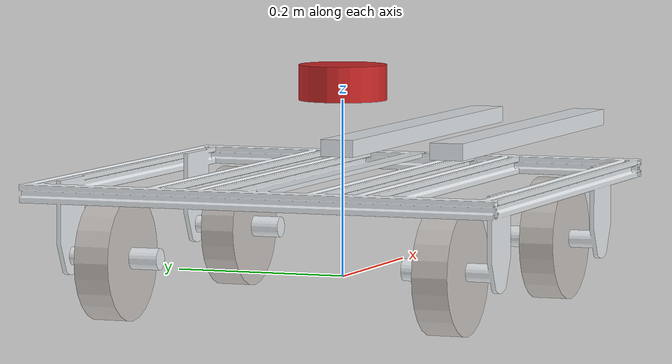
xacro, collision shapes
<?xml version="1.0"?>
<robot xmlns:xacro="http://www.ros.org/wiki/xacro" name="mecanum" >

  <link name="base_footprint_mec">
  </link>
  <joint name="base_link_mec_to_base_footprint_mec" type="fixed">
    <origin xyz="0 0 0.12" rpy="0 0 -1.57"/>
    <parent link="base_footprint_mec"/>
    <child link="base_link_mec"/>
  </joint>

  <link name="laser_mec">
    <visual>
      <geometry>
        <cylinder radius="0.05" length="0.04"/>
      </geometry>
    </visual>
    <collision>
      <geometry>
        <cylinder radius="0.05" length="0.04"/>
      </geometry>
    </collision>
    <inertial>
      <origin
        xyz="0 0 0"
        rpy="0 0 0" />
      <mass
        value="0.01" />
      <inertia
        ixx="0.01" ixy="0.0" ixz="0.0"
        iyy="0.01" iyz="0.0"
        izz="0.01"/>
    </inertial>
  </link>

  <joint name="laser_joint" type="fixed">
    <origin xyz="0 0 0.1" rpy="0 0 0"/>
    <parent link="base_link_mec"/>
    <child link="laser_mec"/>
  </joint>

  <link
    name="base_link_mec">
    <inertial>
      <origin
        xyz="-1.12180791878025E-08 -0.00977485494714381 -0.017441883763565"
        rpy="0 0 0" />
      <mass
        value="5.29285820990711" />
      <inertia
        ixx="0.0312149550140326"
        ixy="5.63125927824305E-20"
        ixz="-5.59758545320241E-14"
        iyy="0.0132712718999651"
        iyz="-4.93932954500259E-08"
        izz="0.0441257339050913" />
    </inertial>
    <visual>
      <origin
        xyz="0 0 0"
        rpy="0 0 0" />
      <geometry>
        <mesh
          filename="file:///$(find my_robot_description)/meshes/mecanum_meshes/base_link.STL" />
      </geometry>
      <material
        name="">
        <color
          rgba="0.898039215686275 0.917647058823529 0.929411764705882 1" />
      </material>
    </visual>
    <collision>
      <origin
        xyz="0 0 0"
        rpy="0 0 0" />
      <geometry>
        <mesh
          filename="file:///$(find my_robot_description)/meshes/mecanum_meshes/base_link.STL" />
      </geometry>
    </collision>
  </link>
  <link
    name="wheel_fr_right">
    <inertial>
      <origin
        xyz="1.11022302462516E-16 2.77555756156289E-16 -0.0264473304136224"
        rpy="0 0 0" />
      <mass
        value="2.321375664058358" />
      <inertia
        ixx="9.13370307716643E-05"
        ixy="-1.71242059849761E-18"
        ixz="4.25339531657401E-18"
        iyy="9.13370307716681E-05"
        iyz="7.83097503319576E-17"
        izz="0.00011244499645403" />
    </inertial>
    <visual>
      <origin
        xyz="0 0 0"
        rpy="0 0 0" />
      <geometry>
        <mesh
          filename="file:///$(find my_robot_description)/meshes/mecanum_meshes/wheel_fr_right.STL" />
      </geometry>
      <material
        name="">
        <color
          rgba="0.776470588235294 0.756862745098039 0.737254901960784 1" />
      </material>
    </visual>
    <collision>
      <origin
        xyz="0 0 0"
        rpy="0 0 0" />
      <geometry>
        <cylinder radius="0.07" length="0.04" />
      </geometry>
    </collision>
  </link>
  <joint
    name="joint_fr_right"
    type="fixed">
    <origin
      xyz="0.195390712673452 0.172500000000024 -0.0860000000000467"
      rpy="1.5707963267949 0 1.5707963267949" />
    <parent
      link="base_link_mec" />
    <child
      link="wheel_fr_right" />
    <axis
      xyz="0 0 -1" />
  </joint>
  <link
    name="wheel_bk_right">
    <inertial>
      <origin
        xyz="0 -3.88578058618805E-16 -0.0264473304136225"
        rpy="0 0 0" />
      <mass
        value="2.321375664058357" />
      <inertia
        ixx="9.13370307716783E-05"
        ixy="2.71245560643652E-19"
        ixz="1.52152894112278E-19"
        iyy="9.13370307716787E-05"
        iyz="-7.65183953893873E-17"
        izz="0.000112444996454044" />
    </inertial>
    <visual>
      <origin
        xyz="0 0 0"
        rpy="0 0 0" />
      <geometry>
        <mesh
          filename="file:///$(find my_robot_description)/meshes/mecanum_meshes/wheel_bk_right.STL" />
      </geometry>
      <material
        name="">
        <color
          rgba="0.776470588235294 0.756862745098039 0.737254901960784 1" />
      </material>
    </visual>
    <collision>
      <origin
        xyz="0 0 0"
        rpy="0 0 0" />
      <geometry>
        <cylinder radius="0.07" length="0.04" />
      </geometry>
    </collision>
  </link>
  <joint
    name="joint_bk_right"
    type="fixed">
    <origin
      xyz="0.195390712673452 -0.192499999999931 -0.0860000000000467"
      rpy="-1.5707963267949 0 -1.5707963267949" />
    <parent
      link="base_link_mec" />
    <child
      link="wheel_bk_right" />
    <axis
      xyz="0 0 -1" />
  </joint>
  <link
    name="wheel_fr_left">
    <inertial>
      <origin
        xyz="-4.44089209850063E-16 -5.55111512312578E-17 -0.0264433822598776"
        rpy="0 0 0" />
      <mass
        value="2.321375664058357" />
      <inertia
        ixx="9.13370307716802E-05"
        ixy="-6.42456583323264E-19"
        ixz="-3.07777027087178E-19"
        iyy="9.13370307716807E-05"
        iyz="-7.44176120030688E-17"
        izz="0.000112444996454046" />
    </inertial>
    <visual>
      <origin
        xyz="0 0 0"
        rpy="0 0 0" />
      <geometry>
        <mesh
          filename="file:///$(find my_robot_description)/meshes/mecanum_meshes/wheel_fr_left.STL" />
      </geometry>
      <material
        name="">
        <color
          rgba="0.776470588235294 0.756862745098039 0.737254901960784 1" />
      </material>
    </visual>
    <collision>
      <origin
        xyz="0 0 0"
        rpy="0 0 0" />
      <geometry>
        <cylinder radius="0.07" length="0.04" />
      </geometry>
    </collision>
  </link>
  <joint
    name="joint_fr_left"
    type="fixed">
    <origin
      xyz="-0.195390712673501 0.172500000000024 -0.086000000000046"
      rpy="1.5707963267949 0 -1.5707963267949" />
    <parent
      link="base_link_mec" />
    <child
      link="wheel_fr_left" />
    <axis
      xyz="0 0 1" />
  </joint>
  <link
    name="wheel_bk_left">
    <inertial>
      <origin
        xyz="-5.55111512312578E-16 -5.55111512312578E-17 -0.026443382259877"
        rpy="0 0 0" />
      <mass
        value="2.321375664058359" />
      <inertia
        ixx="9.13370307716977E-05"
        ixy="1.26228140656248E-18"
        ixz="-5.44727388160575E-18"
        iyy="9.13370307716954E-05"
        iyz="-7.63080079235153E-17"
        izz="0.000112444996454065" />
    </inertial>
    <visual>
      <origin
        xyz="0 0 0"
        rpy="0 0 0" />
      <geometry>
        <mesh
          filename="file:///$(find my_robot_description)/meshes/mecanum_meshes/wheel_bk_left.STL" />
      </geometry>
      <material
        name="">
        <color
          rgba="0.776470588235294 0.756862745098039 0.737254901960784 1" />
      </material>
    </visual>
    <collision>
      <origin
        xyz="0 0 0"
        rpy="0 0 0" />
      <geometry>
        <cylinder radius="0.07" length="0.04" />
      </geometry>
    </collision>
  </link>
  <joint
    name="joint_bk_left"
    type="fixed">
    <origin
      xyz="-0.195390712673501 -0.192499999999931 -0.086000000000046"
      rpy="1.5707963267949 0 -1.5707963267949" />
    <parent
      link="base_link_mec" />
    <child
      link="wheel_bk_left" />
    <axis
      xyz="0 0 1" />
  </joint>
  <link
    name="folk_mec_left">
    <inertial>
      <origin
        xyz="0.177964644660968 0.0675000269663049 0.0100000000001946"
        rpy="0 0 0" />
      <mass
        value="0.524544939385207" />
      <inertia
        ixx="4.21229162907784E-05"
        ixy="-2.2703170337156E-19"
        ixz="4.95429230703519E-18"
        iyy="0.0132439651239293"
        iyz="2.33948473441914E-16"
        izz="0.0132439651530278" />
    </inertial>
    <visual>
      <origin
        xyz="0 0 0"
        rpy="0 0 0" />
      <geometry>
        <mesh
          filename="file:///$(find my_robot_description)/meshes/mecanum_meshes/folk_left.STL" />
      </geometry>
      <material
        name="">
        <color
          rgba="0.898039215686275 0.917647058823529 0.929411764705882 1" />
      </material>
    </visual>
    <collision>
      <origin
        xyz="0.177964644660968 0.0675000269663049 0.0100000000001946"
        rpy="0.0 0.0 0.0" />
        <geometry>
            <box size="0.55 0.04 0.02"/>
        </geometry>
     <surface>
        <poissons_ratio>0.347</poissons_ratio>
        <elastic_modulus>8.8e+09</elastic_modulus>
        <ode>
          <soft_cfm>2e+20</soft_cfm>
          <soft_erp>2e+40</soft_erp>
          <kp>1000</kp>
          <kd>1</kd>
          <max_vel>0.01</max_vel>
          <min_depth>1.0</min_depth>
        </ode>
      </surface>
    </collision>
  </link>
  <joint
    name="folk_mec_left_fixed"
    type="fixed">
    <origin
      xyz="0 0.257035355339056 0"
      rpy="0 0 1.5707963267949" />
    <parent
      link="base_link_mec" />
    <child
      link="folk_mec_left" />
    <axis
      xyz="0 0 0" />
  </joint>
  <link
    name="folk_mec_right">
    <inertial>
      <origin
        xyz="0.177964644660968 -0.0674999730337412 0.0100000000002874"
        rpy="0 0 0" />
      <mass
        value="0.524544939385207" />
      <inertia
        ixx="4.21229162907784E-05"
        ixy="-2.27031748685045E-19"
        ixz="4.95429230703519E-18"
        iyy="0.0132439651239293"
        iyz="2.33949438280395E-16"
        izz="0.0132439651530278" />
    </inertial>
    <visual>
      <origin
        xyz="0 0 0"
        rpy="0 0 0" />
      <geometry>
        <mesh
          filename="file:///$(find my_robot_description)/meshes/mecanum_meshes/folk_right.STL" />
      </geometry>
      <material
        name="">
        <color
          rgba="0.898039215686275 0.917647058823529 0.929411764705882 1" />
      </material>
    </visual>
    <collision>
      <origin
        xyz="0.177964644660968 -0.0674999730337412 0.0100000000002874"
        rpy="0.0 0.0 0.0" />
        <geometry>
            <box size="0.55 0.04 0.02"/>
        </geometry>
     <surface>
        <poissons_ratio>0.347</poissons_ratio>
        <elastic_modulus>8.8e+09</elastic_modulus>
        <ode>
          <soft_cfm>2e+20</soft_cfm>
          <soft_erp>2e+40</soft_erp>
          <kp>1000</kp>
          <kd>1</kd>
          <max_vel>0.01</max_vel>
          <min_depth>1.0</min_depth>
        </ode>
      </surface>
    </collision>
  </link>
  <joint
    name="folk_mec_right_fixed"
    type="fixed">
    <origin
      xyz="0 0.257035355339056 0"
      rpy="0 0 1.5707963267949" />
    <parent
      link="base_link_mec" />
    <child
      link="folk_mec_right" />
    <axis
      xyz="0 0 0" />
  </joint>

    <gazebo reference="wheel_fr_left">
      <material>Gazebo/Grey</material>
    </gazebo>

    <gazebo reference="wheel_fr_right">
      <material>Gazebo/Grey</material>
    </gazebo>

    <gazebo reference="wheel_bk_left">
      <material>Gazebo/Grey</material>
    </gazebo>

    <gazebo reference="wheel_bk_right">
      <material>Gazebo/Grey</material>
    </gazebo>

<gazebo>
  <plugin name="gazebo_ros_planar_move" filename="libgazebo_ros_planar_move.so">

    <ros>

      <!-- Add a namespace -->
      <namespace>mec</namespace>

      <!-- Remap the default topic -->
      <remapping>/mec/cmd_vel:=/cmd_vel_follower</remapping>
      <remapping>odom:=odom</remapping>

    </ros>

    <update_rate>100</update_rate>
    <publish_rate>10</publish_rate>

    <!-- output -->
    <publish_odom>true</publish_odom>
    <publish_odom_tf>true</publish_odom_tf>

    <odometry_frame>mec_odom</odometry_frame>
    <robot_base_frame>base_footprint_mec</robot_base_frame>
    <publish_wheel_tf>true</publish_wheel_tf>

    <covariance_x>0.0001</covariance_x>
    <covariance_y>0.0001</covariance_y>
    <covariance_yaw>0.01</covariance_yaw>

  </plugin>
</gazebo>

  <gazebo reference="laser_mec">
    <material>Gazebo/Red</material>

    <sensor name="laser" type="ray">
      <namespace>mec</namespace>
      <pose>0 0 0 0 0 0</pose>
      <visualize>false</visualize>
      <update_rate>10</update_rate>
      <ray>
        <scan>
          <horizontal>
            <samples>360</samples>
            <min_angle>-3.14</min_angle>
            <max_angle>3.14</max_angle>
          </horizontal>
        </scan>
        <range>
          <min>0.3</min>
          <max>12</max>
        </range>
      </ray>
      <plugin name="laser_mec" filename="libgazebo_ros_ray_sensor.so">
        <namespace>mec</namespace>
        <ros>
          <argument>/mec/out:=/scan_mec</argument>
        </ros>
        <output_type>sensor_msgs/LaserScan</output_type>
        <frame_name>laser_mec</frame_name>
      </plugin>
    </sensor>
  </gazebo>

</robot>
